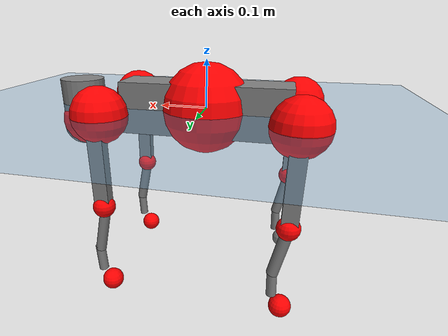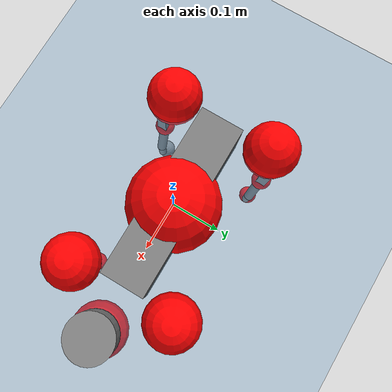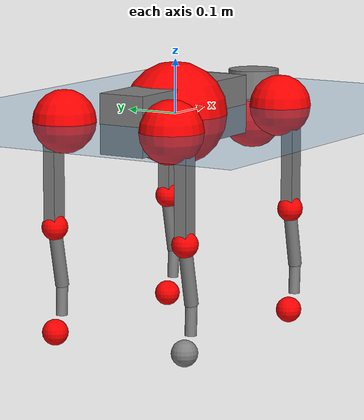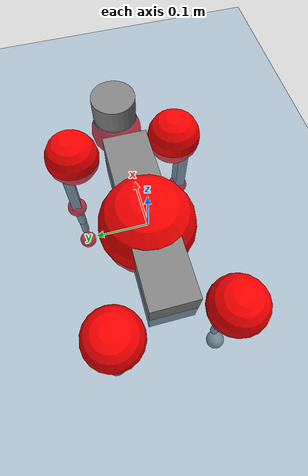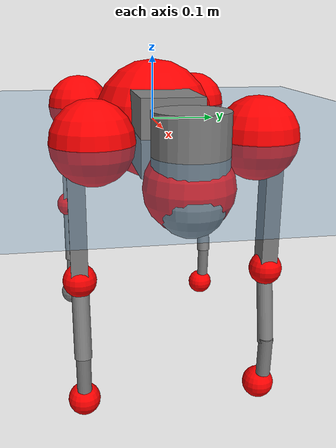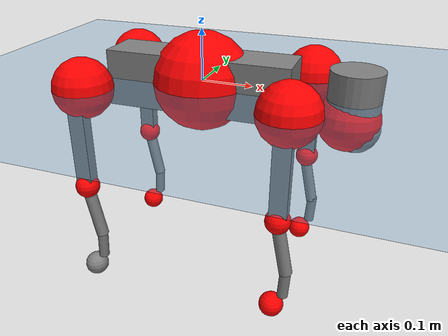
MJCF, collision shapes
<mujoco model="go2">
  <compiler angle="radian" assetdir="assets" balanceinertia="true" inertiafromgeom="false"/>

  <option timestep="0.005" density="1.2" viscosity="2e-05"/>

  <size nkey="1"/>

  <visual>
    <quality shadowsize="8192"/>
    <map shadowclip="0.5"/>
  </visual>

  <default>
    <default class="/">
      <geom contype="0" conaffinity="0" group="1" solref="-1000 -80"/>
      <site size="0.01 0.005 0.005" group="5"/>
      <general forcelimited="true" biastype="affine" gainprm="20" biasprm="0 -20 -0.5"/>
      <default class="go2">
        <joint armature="0.01" damping="0.01" frictionloss="0.2"/>
        <geom condim="1" margin="0.001"/>
        <default class="visual">
          <geom type="mesh" group="2"/>
        </default>
        <default class="collision">
          <geom group="3"/>
          <default class="foot">
            <geom size="0.022 0 0" condim="6" priority="1" friction="0.8 0.02 0.01" solimp="0.015 1 0.022"/>
          </default>
        </default>
        <default class="reward_collision_sphere">
          <geom group="5" rgba="1 0 0 1"/>
        </default>
      </default>
    </default>
  </default>

  <asset>
    <texture type="skybox" colorspace="auto" name="//unnamed_texture_0" builtin="gradient" rgb1="0.95 0.95 0.95" rgb2="0.95 0.95 0.95" width="100" height="600"/>
    <texture type="2d" colorspace="auto" name="texplane" builtin="checker" rgb1="0.345 0.575 0.748" rgb2="0.345 0.575 0.748" markrgb="1 1 1" width="512" height="512"/>
    <material name="MatPlane" class="/" texture="texplane" texuniform="true" texrepeat="2 2" specular="0.9"/>
    <material name="metal" class="/" rgba="0.9 0.95 0.95 1"/>
    <material name="black" class="/" rgba="0 0 0 1"/>
    <material name="white" class="/"/>
    <material name="gray" class="/" rgba="0.671705 0.692426 0.77427 1"/>
    <mesh name="base_0" class="/" file="base_0.obj"/>
    <mesh name="base_1" class="/" file="base_1.obj"/>
    <mesh name="base_2" class="/" file="base_2.obj"/>
    <mesh name="base_3" class="/" file="base_3.obj"/>
    <mesh name="base_4" class="/" file="base_4.obj"/>
    <mesh name="hip_0" class="/" file="hip_0.obj"/>
    <mesh name="hip_1" class="/" file="hip_1.obj"/>
    <mesh name="thigh_0" class="/" file="thigh_0.obj"/>
    <mesh name="thigh_1" class="/" file="thigh_1.obj"/>
    <mesh name="thigh_mirror_0" class="/" file="thigh_mirror_0.obj"/>
    <mesh name="thigh_mirror_1" class="/" file="thigh_mirror_1.obj"/>
    <mesh name="calf_0" class="/" file="calf_0.obj"/>
    <mesh name="calf_1" class="/" file="calf_1.obj"/>
    <mesh name="calf_mirror_0" class="/" file="calf_mirror_0.obj"/>
    <mesh name="calf_mirror_1" class="/" file="calf_mirror_1.obj"/>
    <mesh name="foot" class="/" file="foot.obj"/>
  </asset>

  <worldbody>
    <geom name="floor" class="/" size="100 100 0.125" type="plane" group="0" material="MatPlane"/>
    <light name="toplight_shadow" class="/" pos="0 0 5" dir="0.0990148 0.0990148 -0.990148" type="directional" ambient="0.04 0.04 0.04" diffuse="0.55 0.55 0.55" specular="0.12 0.12 0.12"/>
    <light name="toplight_fill" class="/" pos="0 0 5" dir="0.0990148 0.0990148 -0.990148" type="directional" castshadow="false" ambient="0.04 0.04 0.04" diffuse="0.3 0.3 0.3" specular="0.08 0.08 0.08"/>
    <body name="trunk" childclass="go2" pos="-0.000181704 0.000865226 -0.000355312" quat="1 -0.000209721 -0.000376988 3.95407e-05">
      <inertial pos="0.0216538 -0.000305194 -0.00579452" quat="0.00165118 0.7144 -0.00389871 0.699725" mass="5.98642" diaginertia="0.107675 0.0794374 0.0150029"/>
      <joint name="//unnamed_joint_0" type="free" armature="0" damping="0" frictionloss="0"/>
      <geom name="//unnamed_geom_1" class="visual" material="black" mesh="base_0"/>
      <geom name="//unnamed_geom_2" class="visual" material="black" mesh="base_1"/>
      <geom name="//unnamed_geom_3" class="visual" material="black" mesh="base_2"/>
      <geom name="//unnamed_geom_4" class="visual" material="white" mesh="base_3"/>
      <geom name="//unnamed_geom_5" class="visual" material="gray" mesh="base_4"/>
      <geom name="trunk_1" class="collision" size="0.179946 0.0447235 0.0545292" type="box"/>
      <geom name="trunk_2" class="collision" size="0.0478326 0.0430494" pos="0.285669 0 0.00908763" type="cylinder"/>
      <geom name="trunk_3" class="collision" size="0.0449627" pos="0.293688 0 -0.0545258"/>
      <geom name="//unnamed_geom_9" class="reward_collision_sphere" size="0.0956653"/>
      <geom name="//unnamed_geom_10" class="reward_collision_sphere" size="0.0573992" pos="0.280658 0 -0.0408944"/>
      <site name="imu" pos="-0.0243558 -0.00103234 0.0374633" size="0.00956653"/>
      <camera name="track" pos="0 -1.91769 0" quat="0.707107 0.707107 0 0" mode="trackcom"/>
      <camera name="ego_camera" pos="0.312733 0 0.0408944" quat="-0.5 -0.5 0.5 0.5"/>
      <body name="FL_hip" pos="0.193658 0.0451846 0.000605723" quat="1 0.000109681 -0.000102873 -1.35542e-05">
        <inertial pos="-0.00528245 0.00279367 -0.000463977" quat="0.498721 0.500741 0.502814 0.497708" mass="0.597988" diaginertia="0.000902035 0.000487709 0.000299432"/>
        <joint name="FL_hip_joint" pos="0 0 0" axis="0.999998 0.0020509 -0.000387386" stiffness="0.00518188" range="-1.0365 1.04324" armature="0.00964754" damping="0.00272052" frictionloss="0.191529"/>
        <geom name="//unnamed_geom_11" class="visual" material="metal" mesh="hip_0"/>
        <geom name="//unnamed_geom_12" class="visual" material="gray" mesh="hip_1"/>
        <geom name="//unnamed_geom_13" class="collision" size="0.044006 0.0191331" pos="0 0.0767077 0" quat="0.707107 0.707107 0 0" type="cylinder"/>
        <geom name="//unnamed_geom_14" class="reward_collision_sphere" size="0.0573992" pos="0 0.0671192 0"/>
        <body name="FL_thigh" pos="-0.00124272 0.0909527 0.000652685" quat="1 0.000117084 2.37791e-05 -8.75466e-05">
          <inertial pos="-0.00383574 -0.0207182 -0.0293756" quat="0.829505 0.0850408 -0.0200598 0.551623" mass="1.00098" diaginertia="0.00604726 0.00474665 0.000544204"/>
          <joint name="FL_thigh_joint" pos="0 0 0" axis="0.00243238 0.999996 -0.00144415" stiffness="0.00598858" range="-1.55112 3.49597" armature="0.00970798" damping="0.00588084" frictionloss="0.197991"/>
          <geom name="//unnamed_geom_15" class="visual" material="metal" mesh="thigh_0"/>
          <geom name="//unnamed_geom_16" class="visual" material="gray" mesh="thigh_1"/>
          <geom name="//unnamed_geom_17" class="collision" size="0.101884 0.011719 0.0162631" pos="0 0 -0.0967833" quat="0.707107 0 0.707107 0" type="box"/>
          <body name="FL_calf" pos="-0.000396555 0.000142032 -0.193866" quat="1 9.77405e-06 2.55386e-05 0.000137434">
            <inertial pos="0.00677473 0.000259964 -0.127363" quat="0.710432 0.00175082 -0.00512671 0.703745" mass="0.214116" diaginertia="0.00152254 0.00119703 3.33876e-05"/>
            <joint name="FL_calf_joint" pos="0 0 0" axis="0.000609689 0.999997 -0.00244953" range="-2.71597 -0.850309" armature="0.00991099" damping="0.00646568" frictionloss="0.194146"/>
            <geom name="//unnamed_geom_18" class="visual" material="gray" mesh="calf_0"/>
            <geom name="//unnamed_geom_19" class="visual" material="black" mesh="calf_1"/>
            <geom name="FL_calf0" class="collision" size="0.0114798 0.0573992" pos="0.00801879 0 -0.0545258" quat="0.994493 0 -0.104807 0" type="cylinder"/>
            <geom name="//unnamed_geom_21" class="collision" size="0.0105232 0.0310912" pos="0.020047 0 -0.134497" quat="0.999688 0 0.0249974 0" type="cylinder"/>
            <geom name="//unnamed_geom_22" class="visual" pos="0 0 -0.193567" quat="1 0 0 0" material="black" mesh="foot"/>
            <geom name="FL_foot" class="foot" size="0.0161368" pos="-0.0020047 0 -0.193567"/>
            <geom name="//unnamed_geom_24" class="reward_collision_sphere" size="0.0239163"/>
            <geom name="//unnamed_geom_25" class="reward_collision_sphere" size="0.0239163" pos="-0.0020047 0 -0.193567"/>
            <site name="FL_foot" class="foot" pos="-0.0020047 0 -0.193567" size="0.00956653"/>
          </body>
        </body>
      </body>
      <body name="FR_hip" pos="0.194087 -0.0430965 9.39965e-05" quat="1 5.14897e-05 5.8944e-05 -1.24254e-05">
        <inertial pos="-0.00509753 -0.00163444 -0.000821965" quat="0.497909 0.505678 0.498476 0.497894" mass="0.594816" diaginertia="0.000906377 0.000483069 0.000298969"/>
        <joint name="FR_hip_joint" pos="0 0 0" axis="0.999971 -0.00716119 -0.00268861" range="-1.05115 1.0385" armature="0.00979171" damping="0.0142926" frictionloss="0.195539"/>
        <geom name="//unnamed_geom_26" class="visual" pos="0 4.36302e-10 1.87139e-08" quat="4.63268e-05 1 0 0" material="metal" mesh="hip_0"/>
        <geom name="//unnamed_geom_27" class="visual" pos="0 7.07298e-10 -4.62866e-08" quat="4.63268e-05 1 0 0" material="gray" mesh="hip_1"/>
        <geom name="//unnamed_geom_28" class="collision" size="0.044006 0.0191331" pos="0 -0.0767077 0" quat="0.707107 0.707107 0 0" type="cylinder"/>
        <geom name="//unnamed_geom_29" class="reward_collision_sphere" size="0.0573992" pos="0 -0.0671192 0"/>
        <body name="FR_thigh" pos="-0.000361159 -0.0909841 -0.000183912" quat="1 6.12119e-05 3.92564e-05 -0.00010235">
          <inertial pos="-0.00459306 0.0222966 -0.0296195" quat="0.552009 -0.0197415 0.0841603 0.829345" mass="1.01249" diaginertia="0.00607674 0.0047285 0.000543911"/>
          <joint name="FR_thigh_joint" pos="0 0 0" axis="0.00162308 -0.999997 -0.00203452" stiffness="0.00267943" range="-3.49224 1.57587" armature="0.00971327" damping="0.00875952" frictionloss="0.199298"/>
          <geom name="//unnamed_geom_30" class="visual" material="metal" mesh="thigh_mirror_0"/>
          <geom name="//unnamed_geom_31" class="visual" material="gray" mesh="thigh_mirror_1"/>
          <geom name="//unnamed_geom_32" class="collision" size="0.101884 0.011719 0.0162631" pos="0 0 -0.0967833" quat="0.707107 0 0.707107 0" type="box"/>
          <body name="FR_calf" pos="-0.000852054 0.000229625 -0.193509" quat="1 0.000121793 0.000182742 9.21927e-05">
            <inertial pos="0.00712466 -0.000159399 -0.12879" quat="0.703435 -0.00525458 0.00150135 0.710738" mass="0.212193" diaginertia="0.00151472 0.00117897 3.34214e-05"/>
            <joint name="FR_calf_joint" pos="0 0 0" axis="-0.000153419 -1 0.000382917" stiffness="0.000316635" range="0.844472 2.7305" armature="0.0094906" damping="0.00982503" frictionloss="0.190578"/>
            <geom name="//unnamed_geom_33" class="visual" material="gray" mesh="calf_mirror_0"/>
            <geom name="//unnamed_geom_34" class="visual" material="black" mesh="calf_mirror_1"/>
            <geom name="FR_calf0" class="collision" size="0.0124365 0.0573992" pos="0.0100235 0 -0.0545258" quat="0.995004 0 -0.0998334 0" type="cylinder"/>
            <geom name="//unnamed_geom_36" class="collision" size="0.0105232 0.0310912" pos="0.020047 0 -0.134497" quat="0.999688 0 0.0249974 0" type="cylinder"/>
            <geom name="//unnamed_geom_37" class="visual" pos="0 0 -0.193567" quat="1 0 0 0" material="black" mesh="foot"/>
            <geom name="FR_foot" class="foot" size="0.0213931" pos="-0.0020047 0 -0.193567"/>
            <geom name="//unnamed_geom_39" class="reward_collision_sphere" size="0.0239163"/>
            <geom name="//unnamed_geom_40" class="reward_collision_sphere" size="0.0239163" pos="-0.0020047 0 -0.193567"/>
            <site name="FR_foot" class="foot" pos="-0.0020047 0 -0.193567" size="0.00956653"/>
          </body>
        </body>
      </body>
      <body name="RL_hip" pos="-0.193686 0.0439886 0.00130305" quat="1 -0.000139645 6.33296e-05 0.000153453">
        <inertial pos="0.00580584 0.00179799 -0.000983097" quat="0.504476 0.500138 0.497096 0.498259" mass="0.589987" diaginertia="0.000890422 0.000486076 0.000294834"/>
        <joint name="RL_hip_joint" pos="0 0 0" axis="-0.999852 -0.0160957 -0.00613095" stiffness="0.000894159" range="-1.05714 1.04741" armature="0.00934238" damping="0.0142703" frictionloss="0.183869"/>
        <geom name="//unnamed_geom_41" class="visual" pos="-8.15276e-10 0 -1.59813e-07" quat="4.63268e-05 0 1 0" material="metal" mesh="hip_0"/>
        <geom name="//unnamed_geom_42" class="visual" pos="-1.32166e-09 0 -1.41731e-07" quat="4.63268e-05 0 1 0" material="gray" mesh="hip_1"/>
        <geom name="//unnamed_geom_43" class="collision" size="0.044006 0.0191331" pos="0 0.0767077 0" quat="0.707107 0.707107 0 0" type="cylinder"/>
        <geom name="//unnamed_geom_44" class="reward_collision_sphere" size="0.0573992" pos="0 0.0671192 0"/>
        <body name="RL_thigh" pos="0.000376718 0.0917109 9.01546e-05" quat="1 6.58138e-05 -9.34931e-06 -3.97372e-06">
          <inertial pos="-0.00378935 -0.020389 -0.029847" quat="0.828117 0.0879964 -0.0207199 0.553218" mass="1.00676" diaginertia="0.00607625 0.0046965 0.000542849"/>
          <joint name="RL_thigh_joint" pos="0 0 0" axis="-0.000550593 0.999999 -0.000865911" range="-0.520962 4.53764" armature="0.00915547" damping="0.00267087" frictionloss="0.198065"/>
          <geom name="//unnamed_geom_45" class="visual" material="metal" mesh="thigh_0"/>
          <geom name="//unnamed_geom_46" class="visual" material="gray" mesh="thigh_1"/>
          <geom name="//unnamed_geom_47" class="collision" size="0.101884 0.011719 0.0162631" pos="0 0 -0.0967833" quat="0.707107 0 0.707107 0" type="box"/>
          <body name="RL_calf" pos="0.000650732 -0.000782652 -0.194233" quat="1 0.000142352 -8.49015e-05 -7.86198e-05">
            <inertial pos="0.00634671 -0.00101316 -0.128069" quat="0.710763 0.00167 -0.00579831 0.703405" mass="0.210818" diaginertia="0.00152732 0.00120136 3.33244e-05"/>
            <joint name="RL_calf_joint" pos="0 0 0" axis="0.00186083 0.999955 0.00928049" range="-2.71663 -0.835192" armature="0.0097708" damping="0.00101318" frictionloss="0.19962"/>
            <geom name="//unnamed_geom_48" class="visual" material="gray" mesh="calf_0"/>
            <geom name="//unnamed_geom_49" class="visual" material="black" mesh="calf_1"/>
            <geom name="RL_calf0" class="collision" size="0.0124365 0.0573992" pos="0.0100235 0 -0.0545258" quat="0.995004 0 -0.0998334 0" type="cylinder"/>
            <geom name="//unnamed_geom_51" class="collision" size="0.0105232 0.0310912" pos="0.020047 0 -0.134497" quat="0.999688 0 0.0249974 0" type="cylinder"/>
            <geom name="//unnamed_geom_52" class="visual" pos="0 0 -0.193567" quat="1 0 0 0" material="black" mesh="foot"/>
            <geom name="RL_foot" class="foot" size="0.0189627" pos="-0.0020047 0 -0.193567"/>
            <geom name="//unnamed_geom_54" class="reward_collision_sphere" size="0.0239163"/>
            <geom name="//unnamed_geom_55" class="reward_collision_sphere" size="0.0239163" pos="-0.0020047 0 -0.193567"/>
            <site name="RL_foot" class="foot" pos="-0.0020047 0 -0.193567" size="0.00956653"/>
          </body>
        </body>
      </body>
      <body name="RR_hip" pos="-0.193757 -0.0459604 -0.00120639" quat="1 -0.00024892 -0.000163699 -0.000115974">
        <inertial pos="0.00505729 -0.0022618 0.000251985" quat="0.499146 0.496848 0.498463 0.505499" mass="0.597628" diaginertia="0.000900892 0.000488331 0.000301863"/>
        <joint name="RR_hip_joint" pos="0 0 0" axis="-1 -0.000644808 -7.60935e-05" range="-1.05235 1.03035" armature="0.0094938" damping="0.00983495" frictionloss="0.183566"/>
        <geom name="//unnamed_geom_56" class="visual" pos="8.1377e-10 4.36302e-10 -1.78527e-07" quat="2.14617e-09 4.63268e-05 4.63268e-05 -1" material="metal" mesh="hip_0"/>
        <geom name="//unnamed_geom_57" class="visual" pos="1.32539e-09 7.07298e-10 -9.54447e-08" quat="2.14617e-09 4.63268e-05 4.63268e-05 -1" material="gray" mesh="hip_1"/>
        <geom name="//unnamed_geom_58" class="collision" size="0.044006 0.0191331" pos="0 -0.0767077 0" quat="0.707107 0.707107 0 0" type="cylinder"/>
        <geom name="//unnamed_geom_59" class="reward_collision_sphere" size="0.0573992" pos="0 -0.0671192 0"/>
        <body name="RR_thigh" pos="0.00118046 -0.0929649 -0.000996233" quat="1 -1.2871e-06 6.04358e-05 0.000197861">
          <inertial pos="-0.00376263 0.0222275 -0.0299012" quat="0.551482 -0.0205083 0.0846086 0.829631" mass="1.01942" diaginertia="0.00607106 0.00473752 0.000553756"/>
          <joint name="RR_thigh_joint" pos="0 0 0" axis="-0.00501224 -0.999978 0.00440095" range="-4.54148 0.534588" armature="0.00944119" damping="0.00870752" frictionloss="0.194039"/>
          <geom name="//unnamed_geom_60" class="visual" material="metal" mesh="thigh_mirror_0"/>
          <geom name="//unnamed_geom_61" class="visual" material="gray" mesh="thigh_mirror_1"/>
          <geom name="//unnamed_geom_62" class="collision" size="0.101884 0.011719 0.0162631" pos="0 0 -0.0967833" quat="0.707107 0 0.707107 0" type="box"/>
          <body name="RR_calf" pos="0.000122941 -0.000646643 -0.194208" quat="1 -2.51727e-05 -2.28884e-05 -9.95404e-05">
            <inertial pos="0.00675126 0.000435812 -0.12848" quat="0.703645 -0.00451121 0.00148124 0.710535" mass="0.209263" diaginertia="0.00151748 0.00118067 3.30866e-05"/>
            <joint name="RR_calf_joint" pos="0 0 0" axis="-0.0076444 -0.99997 -0.00157503" stiffness="0.000542987" range="0.831233 2.71812" armature="0.00965586" damping="0.00735371" frictionloss="0.184766"/>
            <geom name="//unnamed_geom_63" class="visual" material="gray" mesh="calf_mirror_0"/>
            <geom name="//unnamed_geom_64" class="visual" material="black" mesh="calf_mirror_1"/>
            <geom name="RR_calf0" class="collision" size="0.0124365 0.0573992" pos="0.0100235 0 -0.0545258" quat="0.995004 0 -0.0998334 0" type="cylinder"/>
            <geom name="//unnamed_geom_66" class="collision" size="0.0105232 0.0310912" pos="0.020047 0 -0.134497" quat="0.999688 0 0.0249974 0" type="cylinder"/>
            <geom name="//unnamed_geom_67" class="visual" pos="0 0 -0.193567" quat="1 0 0 0" material="black" mesh="foot"/>
            <geom name="RR_foot" class="foot" size="0.0239774" pos="-0.0020047 0 -0.193567"/>
            <geom name="//unnamed_geom_69" class="reward_collision_sphere" size="0.0239163"/>
            <geom name="//unnamed_geom_70" class="reward_collision_sphere" size="0.0239163" pos="-0.0020047 0 -0.193567"/>
            <site name="RR_foot" class="foot" pos="-0.0020047 0 -0.193567" size="0.00956653"/>
          </body>
        </body>
      </body>
    </body>
  </worldbody>

  <contact>
    <pair class="/" geom1="floor" geom2="FL_foot" name="//unnamed_contact_0"/>
    <pair class="/" geom1="floor" geom2="FR_foot" name="//unnamed_contact_1"/>
    <pair class="/" geom1="floor" geom2="RL_foot" name="//unnamed_contact_2"/>
    <pair class="/" geom1="floor" geom2="RR_foot" name="//unnamed_contact_3"/>
  </contact>

  <actuator>
    <general name="FL_hip" class="/" joint="FL_hip_joint" forcerange="-22.2598 22.2598" gainprm="19.2602" biasprm="0 -19.2602 -0.476691"/>
    <general name="FL_thigh" class="/" joint="FL_thigh_joint" forcerange="-22.8445 22.8445" gainprm="19.2602" biasprm="0 -19.2602 -0.476691"/>
    <general name="FL_calf" class="/" joint="FL_calf_joint" forcerange="-43.08 43.08" gainprm="19.2602" biasprm="0 -19.2602 -0.476691"/>
    <general name="FR_hip" class="/" joint="FR_hip_joint" forcerange="-23.0603 23.0603" gainprm="19.2602" biasprm="0 -19.2602 -0.476691"/>
    <general name="FR_thigh" class="/" joint="FR_thigh_joint" forcerange="-22.6058 22.6058" gainprm="19.2602" biasprm="0 -19.2602 -0.476691"/>
    <general name="FR_calf" class="/" joint="FR_calf_joint" forcerange="-44.5854 44.5854" gainprm="19.2602" biasprm="0 -19.2602 -0.476691"/>
    <general name="RL_hip" class="/" joint="RL_hip_joint" forcerange="-22.4759 22.4759" gainprm="19.2602" biasprm="0 -19.2602 -0.476691"/>
    <general name="RL_thigh" class="/" joint="RL_thigh_joint" forcerange="-22.5472 22.5472" gainprm="19.2602" biasprm="0 -19.2602 -0.476691"/>
    <general name="RL_calf" class="/" joint="RL_calf_joint" forcerange="-43.9225 43.9225" gainprm="19.2602" biasprm="0 -19.2602 -0.476691"/>
    <general name="RR_hip" class="/" joint="RR_hip_joint" forcerange="-23.1013 23.1013" gainprm="19.2602" biasprm="0 -19.2602 -0.476691"/>
    <general name="RR_thigh" class="/" joint="RR_thigh_joint" forcerange="-22.7401 22.7401" gainprm="19.2602" biasprm="0 -19.2602 -0.476691"/>
    <general name="RR_calf" class="/" joint="RR_calf_joint" forcerange="-43.3031 43.3031" gainprm="19.2602" biasprm="0 -19.2602 -0.476691"/>
  </actuator>

  <sensor>
    <gyro site="imu" name="imu_angular_velocity"/>
    <velocimeter site="imu" name="imu_linear_velocity"/>
    <framelinvel objtype="site" objname="FL_foot" name="FL_foot_global_linear_velocity"/>
    <framelinvel objtype="site" objname="FR_foot" name="FR_foot_global_linear_velocity"/>
    <framelinvel objtype="site" objname="RL_foot" name="RL_foot_global_linear_velocity"/>
    <framelinvel objtype="site" objname="RR_foot" name="RR_foot_global_linear_velocity"/>
  </sensor>

  <keyframe>
    <key name="home" qpos="0 0 0.325 1 0 0 0 0.1 0.8 -1.5 -0.1 -0.8 1.5 -0.1 0.8 -1.5 0.1 -0.8 1.5"/>
  </keyframe>
</mujoco>
